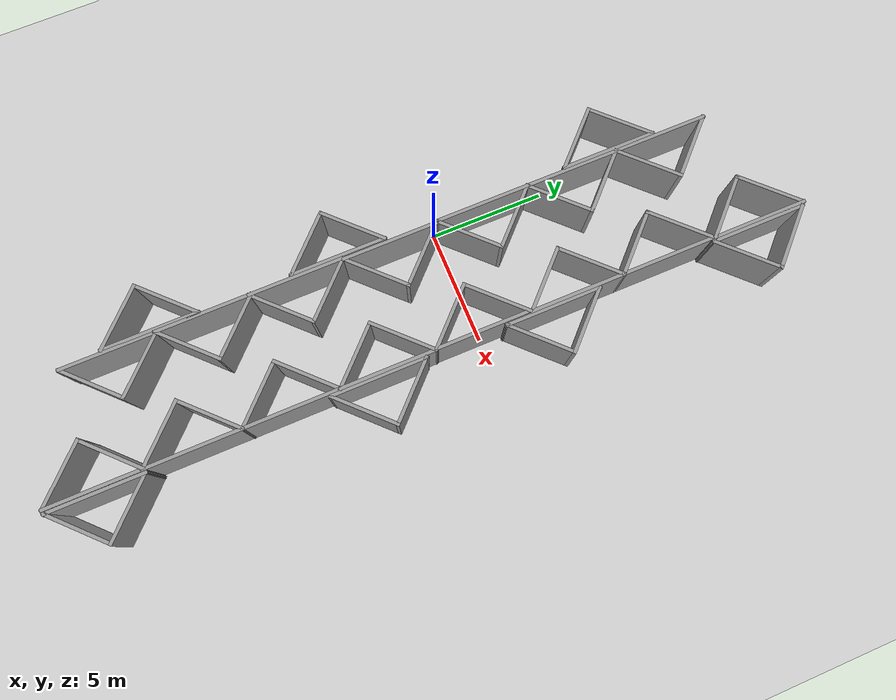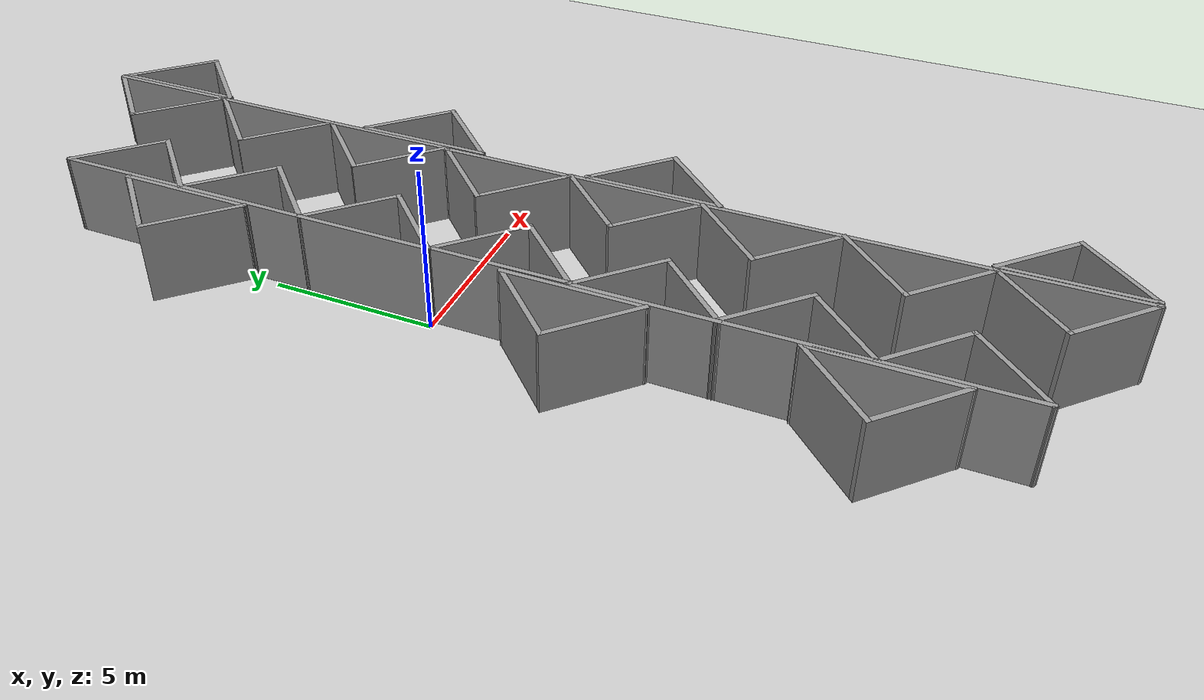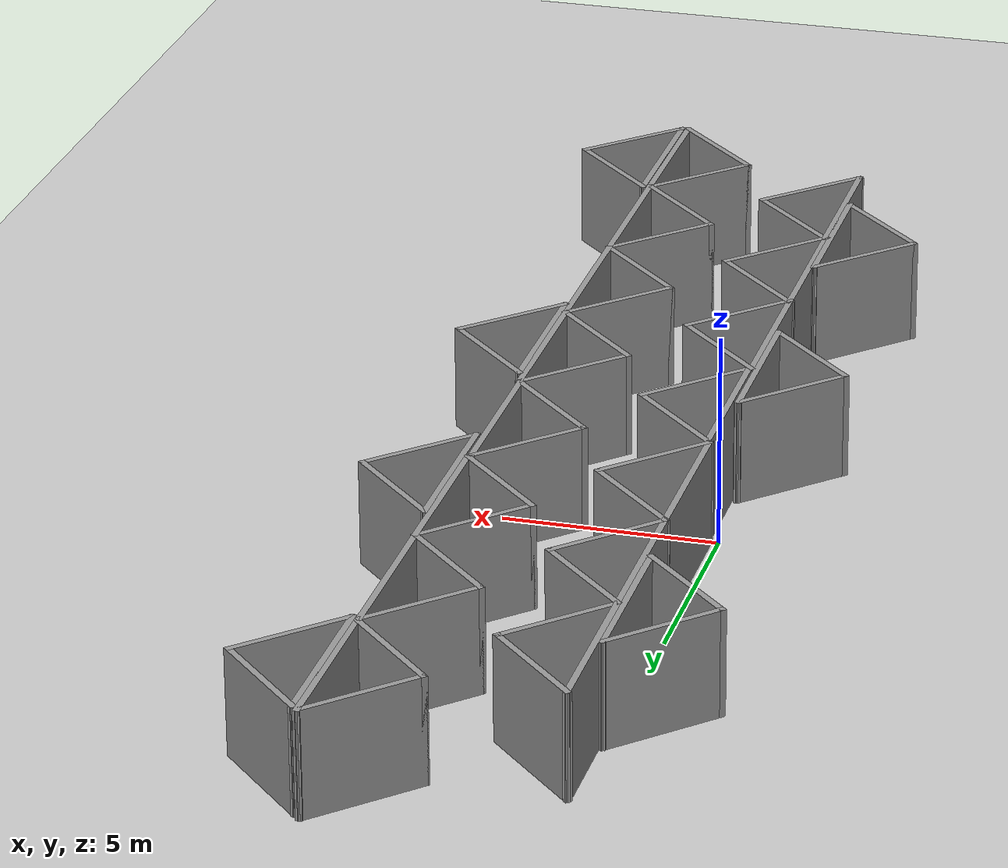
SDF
<sdf version="1.6">
 <world name="default">
  <light name="sun" type="directional">
   <pose>0 0 10 0 -0 0</pose>
   <diffuse>0.8 0.8 0.8 1</diffuse>
   <specular>0.2 0.2 0.2 1</specular>
   <attenuation>
    <range>1000</range>
    <constant>0.9</constant>
    <linear>0.01</linear>
    <quadratic>0.001</quadratic>
   </attenuation>
   <direction>-0.5 0.1 -0.9</direction>
  </light>
  <model name="ground_plane">
   <static>1</static>
   <link name="link">
    <collision name="collision">
     <geometry><plane><normal>0 0 1</normal><size>100 100</size></plane></geometry>
     <surface>
      <contact><collide_bitmask>65535</collide_bitmask></contact>
      <friction><ode><mu>100</mu><mu2>50</mu2></ode></friction>
     </surface>
    </collision>
    <visual name="visual">
     <cast_shadows>0</cast_shadows>
     <geometry><plane><normal>0 0 1</normal><size>100 100</size></plane></geometry>
     <material>
      <script><uri>file://media/materials/scripts/gazebo.material</uri><name>Gazebo/Grey</name></script>
     </material>
    </visual>
   </link>
  </model>
  <gravity>0 0 -9.8</gravity>
  <magnetic_field>6e-06 2.3e-05 -4.2e-05</magnetic_field>
  <atmosphere type="adiabatic"/>
  <physics name="default_physics" default="0" type="ode">
   <max_step_size>0.001</max_step_size>
   <real_time_factor>1</real_time_factor>
   <real_time_update_rate>1000</real_time_update_rate>
  </physics>
  <scene><ambient>0.4 0.4 0.4 1</ambient><background>0.7 0.7 0.7 1</background><shadows>1</shadows></scene>
  <audio><device>default</device></audio>
  <spherical_coordinates>
   <surface_model>EARTH_WGS84</surface_model>
   <latitude_deg>0</latitude_deg>
   <longitude_deg>0</longitude_deg>
   <elevation>0</elevation>
   <heading_deg>0</heading_deg>
  </spherical_coordinates>
  <model name="tri_90deg_3m">
   <pose>4.12957 0.012849 0 0 -0 0</pose>
   <link name="Wall_46">
    <collision name="Wall_46_Collision">
     <geometry><box><size>3 0.15 2.5</size></box></geometry>
     <pose>0 0 1.25 0 -0 0</pose>
    </collision>
    <visual name="Wall_46_Visual">
     <pose>0 0 1.25 0 -0 0</pose>
     <geometry><box><size>3 0.15 2.5</size></box></geometry>
     <material>
      <script><uri>file://media/materials/scripts/gazebo.material</uri><name>Gazebo/Grey</name></script>
      <ambient>1 1 1 1</ambient>
     </material>
     <meta><layer>0</layer></meta>
    </visual>
    <pose>0 1.00763 0 0 -0 -2.35619</pose>
   </link>
   <link name="Wall_47">
    <collision name="Wall_47_Collision">
     <geometry><box><size>3 0.15 2.5</size></box></geometry>
     <pose>0 0 1.25 0 -0 0</pose>
    </collision>
    <visual name="Wall_47_Visual">
     <pose>0 0 1.25 0 -0 0</pose>
     <geometry><box><size>3 0.15 2.5</size></box></geometry>
     <material>
      <script><uri>file://media/materials/scripts/gazebo.material</uri><name>Gazebo/Grey</name></script>
      <ambient>1 1 1 1</ambient>
     </material>
     <meta><layer>0</layer></meta>
    </visual>
    <pose>0 -1.00763 0 0 -0 -0.785398</pose>
   </link>
   <link name="Wall_48">
    <collision name="Wall_48_Collision">
     <geometry><box><size>4.18051 0.15 2.5</size></box></geometry>
     <pose>0 0 1.25 0 -0 0</pose>
    </collision>
    <visual name="Wall_48_Visual">
     <pose>0 0 1.25 0 -0 0</pose>
     <geometry><box><size>4.18051 0.15 2.5</size></box></geometry>
     <material>
      <script><uri>file://media/materials/scripts/gazebo.material</uri><name>Gazebo/Grey</name></script>
      <ambient>1 1 1 1</ambient>
     </material>
     <meta><layer>0</layer></meta>
    </visual>
    <pose>1.00763 -0 0 0 -0 1.5708</pose>
   </link>
   <static>1</static>
  </model>
  <model name="tri_90deg_3m_clone">
   <pose>4.157 -4.05337 0 0 -0 0</pose>
   <link name="Wall_46">
    <collision name="Wall_46_Collision">
     <geometry><box><size>3 0.15 2.5</size></box></geometry>
     <pose>0 0 1.25 0 -0 0</pose>
    </collision>
    <visual name="Wall_46_Visual">
     <pose>0 0 1.25 0 -0 0</pose>
     <geometry><box><size>3 0.15 2.5</size></box></geometry>
     <material>
      <script><uri>file://media/materials/scripts/gazebo.material</uri><name>Gazebo/Grey</name></script>
      <ambient>1 1 1 1</ambient>
     </material>
     <meta><layer>0</layer></meta>
    </visual>
    <pose>0 1.00763 0 0 -0 -2.35619</pose>
   </link>
   <link name="Wall_47">
    <collision name="Wall_47_Collision">
     <geometry><box><size>3 0.15 2.5</size></box></geometry>
     <pose>0 0 1.25 0 -0 0</pose>
    </collision>
    <visual name="Wall_47_Visual">
     <pose>0 0 1.25 0 -0 0</pose>
     <geometry><box><size>3 0.15 2.5</size></box></geometry>
     <material>
      <script><uri>file://media/materials/scripts/gazebo.material</uri><name>Gazebo/Grey</name></script>
      <ambient>1 1 1 1</ambient>
     </material>
     <meta><layer>0</layer></meta>
    </visual>
    <pose>0 -1.00763 0 0 -0 -0.785398</pose>
   </link>
   <link name="Wall_48">
    <collision name="Wall_48_Collision">
     <geometry><box><size>4.18051 0.15 2.5</size></box></geometry>
     <pose>0 0 1.25 0 -0 0</pose>
    </collision>
    <visual name="Wall_48_Visual">
     <pose>0 0 1.25 0 -0 0</pose>
     <geometry><box><size>4.18051 0.15 2.5</size></box></geometry>
     <material>
      <script><uri>file://media/materials/scripts/gazebo.material</uri><name>Gazebo/Grey</name></script>
      <ambient>1 1 1 1</ambient>
     </material>
     <meta><layer>0</layer></meta>
    </visual>
    <pose>1.00763 -0 0 0 -0 1.5708</pose>
   </link>
   <static>1</static>
  </model>
  <model name="tri_90deg_3m_clone_0">
   <pose>4.15781 -8.09298 0 0 -0 0</pose>
   <link name="Wall_46">
    <collision name="Wall_46_Collision">
     <geometry><box><size>3 0.15 2.5</size></box></geometry>
     <pose>0 0 1.25 0 -0 0</pose>
    </collision>
    <visual name="Wall_46_Visual">
     <pose>0 0 1.25 0 -0 0</pose>
     <geometry><box><size>3 0.15 2.5</size></box></geometry>
     <material>
      <script><uri>file://media/materials/scripts/gazebo.material</uri><name>Gazebo/Grey</name></script>
      <ambient>1 1 1 1</ambient>
     </material>
     <meta><layer>0</layer></meta>
    </visual>
    <pose>0 1.00763 0 0 -0 -2.35619</pose>
   </link>
   <link name="Wall_47">
    <collision name="Wall_47_Collision">
     <geometry><box><size>3 0.15 2.5</size></box></geometry>
     <pose>0 0 1.25 0 -0 0</pose>
    </collision>
    <visual name="Wall_47_Visual">
     <pose>0 0 1.25 0 -0 0</pose>
     <geometry><box><size>3 0.15 2.5</size></box></geometry>
     <material>
      <script><uri>file://media/materials/scripts/gazebo.material</uri><name>Gazebo/Grey</name></script>
      <ambient>1 1 1 1</ambient>
     </material>
     <meta><layer>0</layer></meta>
    </visual>
    <pose>0 -1.00763 0 0 -0 -0.785398</pose>
   </link>
   <link name="Wall_48">
    <collision name="Wall_48_Collision">
     <geometry><box><size>4.18051 0.15 2.5</size></box></geometry>
     <pose>0 0 1.25 0 -0 0</pose>
    </collision>
    <visual name="Wall_48_Visual">
     <pose>0 0 1.25 0 -0 0</pose>
     <geometry><box><size>4.18051 0.15 2.5</size></box></geometry>
     <material>
      <script><uri>file://media/materials/scripts/gazebo.material</uri><name>Gazebo/Grey</name></script>
      <ambient>1 1 1 1</ambient>
     </material>
     <meta><layer>0</layer></meta>
    </visual>
    <pose>1.00763 -0 0 0 -0 1.5708</pose>
   </link>
   <static>1</static>
  </model>
  <model name="tri_90deg_3m_clone_1">
   <pose>4.15867 -12.1326 0 0 -0 0</pose>
   <link name="Wall_46">
    <collision name="Wall_46_Collision">
     <geometry><box><size>3 0.15 2.5</size></box></geometry>
     <pose>0 0 1.25 0 -0 0</pose>
    </collision>
    <visual name="Wall_46_Visual">
     <pose>0 0 1.25 0 -0 0</pose>
     <geometry><box><size>3 0.15 2.5</size></box></geometry>
     <material>
      <script><uri>file://media/materials/scripts/gazebo.material</uri><name>Gazebo/Grey</name></script>
      <ambient>1 1 1 1</ambient>
     </material>
     <meta><layer>0</layer></meta>
    </visual>
    <pose>0 1.00763 0 0 -0 -2.35619</pose>
   </link>
   <link name="Wall_47">
    <collision name="Wall_47_Collision">
     <geometry><box><size>3 0.15 2.5</size></box></geometry>
     <pose>0 0 1.25 0 -0 0</pose>
    </collision>
    <visual name="Wall_47_Visual">
     <pose>0 0 1.25 0 -0 0</pose>
     <geometry><box><size>3 0.15 2.5</size></box></geometry>
     <material>
      <script><uri>file://media/materials/scripts/gazebo.material</uri><name>Gazebo/Grey</name></script>
      <ambient>1 1 1 1</ambient>
     </material>
     <meta><layer>0</layer></meta>
    </visual>
    <pose>0 -1.00763 0 0 -0 -0.785398</pose>
   </link>
   <link name="Wall_48">
    <collision name="Wall_48_Collision">
     <geometry><box><size>4.18051 0.15 2.5</size></box></geometry>
     <pose>0 0 1.25 0 -0 0</pose>
    </collision>
    <visual name="Wall_48_Visual">
     <pose>0 0 1.25 0 -0 0</pose>
     <geometry><box><size>4.18051 0.15 2.5</size></box></geometry>
     <material>
      <script><uri>file://media/materials/scripts/gazebo.material</uri><name>Gazebo/Grey</name></script>
      <ambient>1 1 1 1</ambient>
     </material>
     <meta><layer>0</layer></meta>
    </visual>
    <pose>1.00763 -0 0 0 -0 1.5708</pose>
   </link>
   <static>1</static>
  </model>
  <model name="tri_90deg_3m_clone_2">
   <pose>4.18187 4.10564 0 0 -0 0</pose>
   <link name="Wall_46">
    <collision name="Wall_46_Collision">
     <geometry><box><size>3 0.15 2.5</size></box></geometry>
     <pose>0 0 1.25 0 -0 0</pose>
    </collision>
    <visual name="Wall_46_Visual">
     <pose>0 0 1.25 0 -0 0</pose>
     <geometry><box><size>3 0.15 2.5</size></box></geometry>
     <material>
      <script><uri>file://media/materials/scripts/gazebo.material</uri><name>Gazebo/Grey</name></script>
      <ambient>1 1 1 1</ambient>
     </material>
     <meta><layer>0</layer></meta>
    </visual>
    <pose>0 1.00763 0 0 -0 -2.35619</pose>
   </link>
   <link name="Wall_47">
    <collision name="Wall_47_Collision">
     <geometry><box><size>3 0.15 2.5</size></box></geometry>
     <pose>0 0 1.25 0 -0 0</pose>
    </collision>
    <visual name="Wall_47_Visual">
     <pose>0 0 1.25 0 -0 0</pose>
     <geometry><box><size>3 0.15 2.5</size></box></geometry>
     <material>
      <script><uri>file://media/materials/scripts/gazebo.material</uri><name>Gazebo/Grey</name></script>
      <ambient>1 1 1 1</ambient>
     </material>
     <meta><layer>0</layer></meta>
    </visual>
    <pose>0 -1.00763 0 0 -0 -0.785398</pose>
   </link>
   <link name="Wall_48">
    <collision name="Wall_48_Collision">
     <geometry><box><size>4.18051 0.15 2.5</size></box></geometry>
     <pose>0 0 1.25 0 -0 0</pose>
    </collision>
    <visual name="Wall_48_Visual">
     <pose>0 0 1.25 0 -0 0</pose>
     <geometry><box><size>4.18051 0.15 2.5</size></box></geometry>
     <material>
      <script><uri>file://media/materials/scripts/gazebo.material</uri><name>Gazebo/Grey</name></script>
      <ambient>1 1 1 1</ambient>
     </material>
     <meta><layer>0</layer></meta>
    </visual>
    <pose>1.00763 -0 0 0 -0 1.5708</pose>
   </link>
   <static>1</static>
  </model>
  <model name="tri_90deg_3m_clone_3">
   <pose>4.18106 8.14527 0 0 -0 0</pose>
   <link name="Wall_46">
    <collision name="Wall_46_Collision">
     <geometry><box><size>3 0.15 2.5</size></box></geometry>
     <pose>0 0 1.25 0 -0 0</pose>
    </collision>
    <visual name="Wall_46_Visual">
     <pose>0 0 1.25 0 -0 0</pose>
     <geometry><box><size>3 0.15 2.5</size></box></geometry>
     <material>
      <script><uri>file://media/materials/scripts/gazebo.material</uri><name>Gazebo/Grey</name></script>
      <ambient>1 1 1 1</ambient>
     </material>
     <meta><layer>0</layer></meta>
    </visual>
    <pose>0 1.00763 0 0 -0 -2.35619</pose>
   </link>
   <link name="Wall_47">
    <collision name="Wall_47_Collision">
     <geometry><box><size>3 0.15 2.5</size></box></geometry>
     <pose>0 0 1.25 0 -0 0</pose>
    </collision>
    <visual name="Wall_47_Visual">
     <pose>0 0 1.25 0 -0 0</pose>
     <geometry><box><size>3 0.15 2.5</size></box></geometry>
     <material>
      <script><uri>file://media/materials/scripts/gazebo.material</uri><name>Gazebo/Grey</name></script>
      <ambient>1 1 1 1</ambient>
     </material>
     <meta><layer>0</layer></meta>
    </visual>
    <pose>0 -1.00763 0 0 -0 -0.785398</pose>
   </link>
   <link name="Wall_48">
    <collision name="Wall_48_Collision">
     <geometry><box><size>4.18051 0.15 2.5</size></box></geometry>
     <pose>0 0 1.25 0 -0 0</pose>
    </collision>
    <visual name="Wall_48_Visual">
     <pose>0 0 1.25 0 -0 0</pose>
     <geometry><box><size>4.18051 0.15 2.5</size></box></geometry>
     <material>
      <script><uri>file://media/materials/scripts/gazebo.material</uri><name>Gazebo/Grey</name></script>
      <ambient>1 1 1 1</ambient>
     </material>
     <meta><layer>0</layer></meta>
    </visual>
    <pose>1.00763 -0 0 0 -0 1.5708</pose>
   </link>
   <static>1</static>
  </model>
  <model name="tri_90deg_3m_clone_4">
   <pose>1.286 -2.03407 0 0 -0 3.14159</pose>
   <link name="Wall_46">
    <collision name="Wall_46_Collision">
     <geometry><box><size>3 0.15 2.5</size></box></geometry>
     <pose>0 0 1.25 0 -0 0</pose>
    </collision>
    <visual name="Wall_46_Visual">
     <pose>0 0 1.25 0 -0 0</pose>
     <geometry><box><size>3 0.15 2.5</size></box></geometry>
     <material>
      <script><uri>file://media/materials/scripts/gazebo.material</uri><name>Gazebo/Grey</name></script>
      <ambient>1 1 1 1</ambient>
     </material>
     <meta><layer>0</layer></meta>
    </visual>
    <pose>0 1.00763 0 0 -0 -2.35619</pose>
   </link>
   <link name="Wall_47">
    <collision name="Wall_47_Collision">
     <geometry><box><size>3 0.15 2.5</size></box></geometry>
     <pose>0 0 1.25 0 -0 0</pose>
    </collision>
    <visual name="Wall_47_Visual">
     <pose>0 0 1.25 0 -0 0</pose>
     <geometry><box><size>3 0.15 2.5</size></box></geometry>
     <material>
      <script><uri>file://media/materials/scripts/gazebo.material</uri><name>Gazebo/Grey</name></script>
      <ambient>1 1 1 1</ambient>
     </material>
     <meta><layer>0</layer></meta>
    </visual>
    <pose>0 -1.00763 0 0 -0 -0.785398</pose>
   </link>
   <link name="Wall_48">
    <collision name="Wall_48_Collision">
     <geometry><box><size>4.18051 0.15 2.5</size></box></geometry>
     <pose>0 0 1.25 0 -0 0</pose>
    </collision>
    <visual name="Wall_48_Visual">
     <pose>0 0 1.25 0 -0 0</pose>
     <geometry><box><size>4.18051 0.15 2.5</size></box></geometry>
     <material>
      <script><uri>file://media/materials/scripts/gazebo.material</uri><name>Gazebo/Grey</name></script>
      <ambient>1 1 1 1</ambient>
     </material>
     <meta><layer>0</layer></meta>
    </visual>
    <pose>1.00763 -0 0 0 -0 1.5708</pose>
   </link>
   <static>1</static>
  </model>
  <model name="tri_90deg_3m_clone_4_clone">
   <pose>1.23405 -6.07331 0 0 -0 3.14159</pose>
   <link name="Wall_46">
    <collision name="Wall_46_Collision">
     <geometry><box><size>3 0.15 2.5</size></box></geometry>
     <pose>0 0 1.25 0 -0 0</pose>
    </collision>
    <visual name="Wall_46_Visual">
     <pose>0 0 1.25 0 -0 0</pose>
     <geometry><box><size>3 0.15 2.5</size></box></geometry>
     <material>
      <script><uri>file://media/materials/scripts/gazebo.material</uri><name>Gazebo/Grey</name></script>
      <ambient>1 1 1 1</ambient>
     </material>
     <meta><layer>0</layer></meta>
    </visual>
    <pose>0 1.00763 0 0 -0 -2.35619</pose>
   </link>
   <link name="Wall_47">
    <collision name="Wall_47_Collision">
     <geometry><box><size>3 0.15 2.5</size></box></geometry>
     <pose>0 0 1.25 0 -0 0</pose>
    </collision>
    <visual name="Wall_47_Visual">
     <pose>0 0 1.25 0 -0 0</pose>
     <geometry><box><size>3 0.15 2.5</size></box></geometry>
     <material>
      <script><uri>file://media/materials/scripts/gazebo.material</uri><name>Gazebo/Grey</name></script>
      <ambient>1 1 1 1</ambient>
     </material>
     <meta><layer>0</layer></meta>
    </visual>
    <pose>0 -1.00763 0 0 -0 -0.785398</pose>
   </link>
   <link name="Wall_48">
    <collision name="Wall_48_Collision">
     <geometry><box><size>4.18051 0.15 2.5</size></box></geometry>
     <pose>0 0 1.25 0 -0 0</pose>
    </collision>
    <visual name="Wall_48_Visual">
     <pose>0 0 1.25 0 -0 0</pose>
     <geometry><box><size>4.18051 0.15 2.5</size></box></geometry>
     <material>
      <script><uri>file://media/materials/scripts/gazebo.material</uri><name>Gazebo/Grey</name></script>
      <ambient>1 1 1 1</ambient>
     </material>
     <meta><layer>0</layer></meta>
    </visual>
    <pose>1.00763 -0 0 0 -0 1.5708</pose>
   </link>
   <static>1</static>
  </model>
  <model name="tri_90deg_3m_clone_4_clone_0">
   <pose>1.23486 -10.0062 0 0 -0 3.14159</pose>
   <link name="Wall_46">
    <collision name="Wall_46_Collision">
     <geometry><box><size>3 0.15 2.5</size></box></geometry>
     <pose>0 0 1.25 0 -0 0</pose>
    </collision>
    <visual name="Wall_46_Visual">
     <pose>0 0 1.25 0 -0 0</pose>
     <geometry><box><size>3 0.15 2.5</size></box></geometry>
     <material>
      <script><uri>file://media/materials/scripts/gazebo.material</uri><name>Gazebo/Grey</name></script>
      <ambient>1 1 1 1</ambient>
     </material>
     <meta><layer>0</layer></meta>
    </visual>
    <pose>0 1.00763 0 0 -0 -2.35619</pose>
   </link>
   <link name="Wall_47">
    <collision name="Wall_47_Collision">
     <geometry><box><size>3 0.15 2.5</size></box></geometry>
     <pose>0 0 1.25 0 -0 0</pose>
    </collision>
    <visual name="Wall_47_Visual">
     <pose>0 0 1.25 0 -0 0</pose>
     <geometry><box><size>3 0.15 2.5</size></box></geometry>
     <material>
      <script><uri>file://media/materials/scripts/gazebo.material</uri><name>Gazebo/Grey</name></script>
      <ambient>1 1 1 1</ambient>
     </material>
     <meta><layer>0</layer></meta>
    </visual>
    <pose>0 -1.00763 0 0 -0 -0.785398</pose>
   </link>
   <link name="Wall_48">
    <collision name="Wall_48_Collision">
     <geometry><box><size>4.18051 0.15 2.5</size></box></geometry>
     <pose>0 0 1.25 0 -0 0</pose>
    </collision>
    <visual name="Wall_48_Visual">
     <pose>0 0 1.25 0 -0 0</pose>
     <geometry><box><size>4.18051 0.15 2.5</size></box></geometry>
     <material>
      <script><uri>file://media/materials/scripts/gazebo.material</uri><name>Gazebo/Grey</name></script>
      <ambient>1 1 1 1</ambient>
     </material>
     <meta><layer>0</layer></meta>
    </visual>
    <pose>1.00763 -0 0 0 -0 1.5708</pose>
   </link>
   <static>1</static>
  </model>
  <model name="tri_90deg_3m_clone_4_clone_1">
   <pose>1.23236 2.05825 0 0 -0 3.14159</pose>
   <link name="Wall_46">
    <collision name="Wall_46_Collision">
     <geometry><box><size>3 0.15 2.5</size></box></geometry>
     <pose>0 0 1.25 0 -0 0</pose>
    </collision>
    <visual name="Wall_46_Visual">
     <pose>0 0 1.25 0 -0 0</pose>
     <geometry><box><size>3 0.15 2.5</size></box></geometry>
     <material>
      <script><uri>file://media/materials/scripts/gazebo.material</uri><name>Gazebo/Grey</name></script>
      <ambient>1 1 1 1</ambient>
     </material>
     <meta><layer>0</layer></meta>
    </visual>
    <pose>0 1.00763 0 0 -0 -2.35619</pose>
   </link>
   <link name="Wall_47">
    <collision name="Wall_47_Collision">
     <geometry><box><size>3 0.15 2.5</size></box></geometry>
     <pose>0 0 1.25 0 -0 0</pose>
    </collision>
    <visual name="Wall_47_Visual">
     <pose>0 0 1.25 0 -0 0</pose>
     <geometry><box><size>3 0.15 2.5</size></box></geometry>
     <material>
      <script><uri>file://media/materials/scripts/gazebo.material</uri><name>Gazebo/Grey</name></script>
      <ambient>1 1 1 1</ambient>
     </material>
     <meta><layer>0</layer></meta>
    </visual>
    <pose>0 -1.00763 0 0 -0 -0.785398</pose>
   </link>
   <link name="Wall_48">
    <collision name="Wall_48_Collision">
     <geometry><box><size>4.18051 0.15 2.5</size></box></geometry>
     <pose>0 0 1.25 0 -0 0</pose>
    </collision>
    <visual name="Wall_48_Visual">
     <pose>0 0 1.25 0 -0 0</pose>
     <geometry><box><size>4.18051 0.15 2.5</size></box></geometry>
     <material>
      <script><uri>file://media/materials/scripts/gazebo.material</uri><name>Gazebo/Grey</name></script>
      <ambient>1 1 1 1</ambient>
     </material>
     <meta><layer>0</layer></meta>
    </visual>
    <pose>1.00763 -0 0 0 -0 1.5708</pose>
   </link>
   <static>1</static>
  </model>
  <model name="tri_90deg_3m_clone_4_clone_2">
   <pose>1.23152 6.09742 0 0 -0 3.14159</pose>
   <link name="Wall_46">
    <collision name="Wall_46_Collision">
     <geometry><box><size>3 0.15 2.5</size></box></geometry>
     <pose>0 0 1.25 0 -0 0</pose>
    </collision>
    <visual name="Wall_46_Visual">
     <pose>0 0 1.25 0 -0 0</pose>
     <geometry><box><size>3 0.15 2.5</size></box></geometry>
     <material>
      <script><uri>file://media/materials/scripts/gazebo.material</uri><name>Gazebo/Grey</name></script>
      <ambient>1 1 1 1</ambient>
     </material>
     <meta><layer>0</layer></meta>
    </visual>
    <pose>0 1.00763 0 0 -0 -2.35619</pose>
   </link>
   <link name="Wall_47">
    <collision name="Wall_47_Collision">
     <geometry><box><size>3 0.15 2.5</size></box></geometry>
     <pose>0 0 1.25 0 -0 0</pose>
    </collision>
    <visual name="Wall_47_Visual">
     <pose>0 0 1.25 0 -0 0</pose>
     <geometry><box><size>3 0.15 2.5</size></box></geometry>
     <material>
      <script><uri>file://media/materials/scripts/gazebo.material</uri><name>Gazebo/Grey</name></script>
      <ambient>1 1 1 1</ambient>
     </material>
     <meta><layer>0</layer></meta>
    </visual>
    <pose>0 -1.00763 0 0 -0 -0.785398</pose>
   </link>
   <link name="Wall_48">
    <collision name="Wall_48_Collision">
     <geometry><box><size>4.18051 0.15 2.5</size></box></geometry>
     <pose>0 0 1.25 0 -0 0</pose>
    </collision>
    <visual name="Wall_48_Visual">
     <pose>0 0 1.25 0 -0 0</pose>
     <geometry><box><size>4.18051 0.15 2.5</size></box></geometry>
     <material>
      <script><uri>file://media/materials/scripts/gazebo.material</uri><name>Gazebo/Grey</name></script>
      <ambient>1 1 1 1</ambient>
     </material>
     <meta><layer>0</layer></meta>
    </visual>
    <pose>1.00763 -0 0 0 -0 1.5708</pose>
   </link>
   <static>1</static>
  </model>
  <model name="tri_90deg_3m_clone_4_clone_3">
   <pose>1.2516 -13.9835 0 0 -0 3.14159</pose>
   <link name="Wall_46">
    <collision name="Wall_46_Collision">
     <geometry><box><size>3 0.15 2.5</size></box></geometry>
     <pose>0 0 1.25 0 -0 0</pose>
    </collision>
    <visual name="Wall_46_Visual">
     <pose>0 0 1.25 0 -0 0</pose>
     <geometry><box><size>3 0.15 2.5</size></box></geometry>
     <material>
      <script><uri>file://media/materials/scripts/gazebo.material</uri><name>Gazebo/Grey</name></script>
      <ambient>1 1 1 1</ambient>
     </material>
     <meta><layer>0</layer></meta>
    </visual>
    <pose>0 1.00763 0 0 -0 -2.35619</pose>
   </link>
   <link name="Wall_47">
    <collision name="Wall_47_Collision">
     <geometry><box><size>3 0.15 2.5</size></box></geometry>
     <pose>0 0 1.25 0 -0 0</pose>
    </collision>
    <visual name="Wall_47_Visual">
     <pose>0 0 1.25 0 -0 0</pose>
     <geometry><box><size>3 0.15 2.5</size></box></geometry>
     <material>
      <script><uri>file://media/materials/scripts/gazebo.material</uri><name>Gazebo/Grey</name></script>
      <ambient>1 1 1 1</ambient>
     </material>
     <meta><layer>0</layer></meta>
    </visual>
    <pose>0 -1.00763 0 0 -0 -0.785398</pose>
   </link>
   <link name="Wall_48">
    <collision name="Wall_48_Collision">
     <geometry><box><size>4.18051 0.15 2.5</size></box></geometry>
     <pose>0 0 1.25 0 -0 0</pose>
    </collision>
    <visual name="Wall_48_Visual">
     <pose>0 0 1.25 0 -0 0</pose>
     <geometry><box><size>4.18051 0.15 2.5</size></box></geometry>
     <material>
      <script><uri>file://media/materials/scripts/gazebo.material</uri><name>Gazebo/Grey</name></script>
      <ambient>1 1 1 1</ambient>
     </material>
     <meta><layer>0</layer></meta>
    </visual>
    <pose>1.00763 -0 0 0 -0 1.5708</pose>
   </link>
   <static>1</static>
  </model>
  <model name="tri_90deg_3m_clone_4_clone_4">
   <pose>1.22993 10.1382 0 0 -0 3.14159</pose>
   <link name="Wall_46">
    <collision name="Wall_46_Collision">
     <geometry><box><size>3 0.15 2.5</size></box></geometry>
     <pose>0 0 1.25 0 -0 0</pose>
    </collision>
    <visual name="Wall_46_Visual">
     <pose>0 0 1.25 0 -0 0</pose>
     <geometry><box><size>3 0.15 2.5</size></box></geometry>
     <material>
      <script><uri>file://media/materials/scripts/gazebo.material</uri><name>Gazebo/Grey</name></script>
      <ambient>1 1 1 1</ambient>
     </material>
     <meta><layer>0</layer></meta>
    </visual>
    <pose>0 1.00763 0 0 -0 -2.35619</pose>
   </link>
   <link name="Wall_47">
    <collision name="Wall_47_Collision">
     <geometry><box><size>3 0.15 2.5</size></box></geometry>
     <pose>0 0 1.25 0 -0 0</pose>
    </collision>
    <visual name="Wall_47_Visual">
     <pose>0 0 1.25 0 -0 0</pose>
     <geometry><box><size>3 0.15 2.5</size></box></geometry>
     <material>
      <script><uri>file://media/materials/scripts/gazebo.material</uri><name>Gazebo/Grey</name></script>
      <ambient>1 1 1 1</ambient>
     </material>
     <meta><layer>0</layer></meta>
    </visual>
    <pose>0 -1.00763 0 0 -0 -0.785398</pose>
   </link>
   <link name="Wall_48">
    <collision name="Wall_48_Collision">
     <geometry><box><size>4.18051 0.15 2.5</size></box></geometry>
     <pose>0 0 1.25 0 -0 0</pose>
    </collision>
    <visual name="Wall_48_Visual">
     <pose>0 0 1.25 0 -0 0</pose>
     <geometry><box><size>4.18051 0.15 2.5</size></box></geometry>
     <material>
      <script><uri>file://media/materials/scripts/gazebo.material</uri><name>Gazebo/Grey</name></script>
      <ambient>1 1 1 1</ambient>
     </material>
     <meta><layer>0</layer></meta>
    </visual>
    <pose>1.00763 -0 0 0 -0 1.5708</pose>
   </link>
   <static>1</static>
  </model>
  <model name="tri_90deg_3m_clone_3_clone">
   <pose>4.2059 12.2394 0 0 -0 0</pose>
   <link name="Wall_46">
    <collision name="Wall_46_Collision">
     <geometry><box><size>3 0.15 2.5</size></box></geometry>
     <pose>0 0 1.25 0 -0 0</pose>
    </collision>
    <visual name="Wall_46_Visual">
     <pose>0 0 1.25 0 -0 0</pose>
     <geometry><box><size>3 0.15 2.5</size></box></geometry>
     <material>
      <script><uri>file://media/materials/scripts/gazebo.material</uri><name>Gazebo/Grey</name></script>
      <ambient>1 1 1 1</ambient>
     </material>
     <meta><layer>0</layer></meta>
    </visual>
    <pose>0 1.00763 0 0 -0 -2.35619</pose>
   </link>
   <link name="Wall_47">
    <collision name="Wall_47_Collision">
     <geometry><box><size>3 0.15 2.5</size></box></geometry>
     <pose>0 0 1.25 0 -0 0</pose>
    </collision>
    <visual name="Wall_47_Visual">
     <pose>0 0 1.25 0 -0 0</pose>
     <geometry><box><size>3 0.15 2.5</size></box></geometry>
     <material>
      <script><uri>file://media/materials/scripts/gazebo.material</uri><name>Gazebo/Grey</name></script>
      <ambient>1 1 1 1</ambient>
     </material>
     <meta><layer>0</layer></meta>
    </visual>
    <pose>0 -1.00763 0 0 -0 -0.785398</pose>
   </link>
   <link name="Wall_48">
    <collision name="Wall_48_Collision">
     <geometry><box><size>4.18051 0.15 2.5</size></box></geometry>
     <pose>0 0 1.25 0 -0 0</pose>
    </collision>
    <visual name="Wall_48_Visual">
     <pose>0 0 1.25 0 -0 0</pose>
     <geometry><box><size>4.18051 0.15 2.5</size></box></geometry>
     <material>
      <script><uri>file://media/materials/scripts/gazebo.material</uri><name>Gazebo/Grey</name></script>
      <ambient>1 1 1 1</ambient>
     </material>
     <meta><layer>0</layer></meta>
    </visual>
    <pose>1.00763 -0 0 0 -0 1.5708</pose>
   </link>
   <static>1</static>
  </model>
  <model name="tri_90deg_3m_clone_3_clone_0">
   <pose>4.15855 -16.1178 0 0 -0 0</pose>
   <link name="Wall_46">
    <collision name="Wall_46_Collision">
     <geometry><box><size>3 0.15 2.5</size></box></geometry>
     <pose>0 0 1.25 0 -0 0</pose>
    </collision>
    <visual name="Wall_46_Visual">
     <pose>0 0 1.25 0 -0 0</pose>
     <geometry><box><size>3 0.15 2.5</size></box></geometry>
     <material>
      <script><uri>file://media/materials/scripts/gazebo.material</uri><name>Gazebo/Grey</name></script>
      <ambient>1 1 1 1</ambient>
     </material>
     <meta><layer>0</layer></meta>
    </visual>
    <pose>0 1.00763 0 0 -0 -2.35619</pose>
   </link>
   <link name="Wall_47">
    <collision name="Wall_47_Collision">
     <geometry><box><size>3 0.15 2.5</size></box></geometry>
     <pose>0 0 1.25 0 -0 0</pose>
    </collision>
    <visual name="Wall_47_Visual">
     <pose>0 0 1.25 0 -0 0</pose>
     <geometry><box><size>3 0.15 2.5</size></box></geometry>
     <material>
      <script><uri>file://media/materials/scripts/gazebo.material</uri><name>Gazebo/Grey</name></script>
      <ambient>1 1 1 1</ambient>
     </material>
     <meta><layer>0</layer></meta>
    </visual>
    <pose>0 -1.00763 0 0 -0 -0.785398</pose>
   </link>
   <link name="Wall_48">
    <collision name="Wall_48_Collision">
     <geometry><box><size>4.18051 0.15 2.5</size></box></geometry>
     <pose>0 0 1.25 0 -0 0</pose>
    </collision>
    <visual name="Wall_48_Visual">
     <pose>0 0 1.25 0 -0 0</pose>
     <geometry><box><size>4.18051 0.15 2.5</size></box></geometry>
     <material>
      <script><uri>file://media/materials/scripts/gazebo.material</uri><name>Gazebo/Grey</name></script>
      <ambient>1 1 1 1</ambient>
     </material>
     <meta><layer>0</layer></meta>
    </visual>
    <pose>1.00763 -0 0 0 -0 1.5708</pose>
   </link>
   <static>1</static>
  </model>
  <model name="tri_90deg_3m_clone_3_clone_1">
   <pose>-0.91961 -4.21179 0 0 -0 0</pose>
   <link name="Wall_46">
    <collision name="Wall_46_Collision">
     <geometry><box><size>3 0.15 2.5</size></box></geometry>
     <pose>0 0 1.25 0 -0 0</pose>
    </collision>
    <visual name="Wall_46_Visual">
     <pose>0 0 1.25 0 -0 0</pose>
     <geometry><box><size>3 0.15 2.5</size></box></geometry>
     <material>
      <script><uri>file://media/materials/scripts/gazebo.material</uri><name>Gazebo/Grey</name></script>
      <ambient>1 1 1 1</ambient>
     </material>
     <meta><layer>0</layer></meta>
    </visual>
    <pose>0 1.00763 0 0 -0 -2.35619</pose>
   </link>
   <link name="Wall_47">
    <collision name="Wall_47_Collision">
     <geometry><box><size>3 0.15 2.5</size></box></geometry>
     <pose>0 0 1.25 0 -0 0</pose>
    </collision>
    <visual name="Wall_47_Visual">
     <pose>0 0 1.25 0 -0 0</pose>
     <geometry><box><size>3 0.15 2.5</size></box></geometry>
     <material>
      <script><uri>file://media/materials/scripts/gazebo.material</uri><name>Gazebo/Grey</name></script>
      <ambient>1 1 1 1</ambient>
     </material>
     <meta><layer>0</layer></meta>
    </visual>
    <pose>0 -1.00763 0 0 -0 -0.785398</pose>
   </link>
   <link name="Wall_48">
    <collision name="Wall_48_Collision">
     <geometry><box><size>4.18051 0.15 2.5</size></box></geometry>
     <pose>0 0 1.25 0 -0 0</pose>
    </collision>
    <visual name="Wall_48_Visual">
     <pose>0 0 1.25 0 -0 0</pose>
     <geometry><box><size>4.18051 0.15 2.5</size></box></geometry>
     <material>
      <script><uri>file://media/materials/scripts/gazebo.material</uri><name>Gazebo/Grey</name></script>
      <ambient>1 1 1 1</ambient>
     </material>
     <meta><layer>0</layer></meta>
    </visual>
    <pose>1.00763 -0 0 0 -0 1.5708</pose>
   </link>
   <static>1</static>
  </model>
  <model name="tri_90deg_3m_clone_3_clone_2">
   <pose>-0.89131 -12.2101 0 0 -0 0</pose>
   <link name="Wall_46">
    <collision name="Wall_46_Collision">
     <geometry><box><size>3 0.15 2.5</size></box></geometry>
     <pose>0 0 1.25 0 -0 0</pose>
    </collision>
    <visual name="Wall_46_Visual">
     <pose>0 0 1.25 0 -0 0</pose>
     <geometry><box><size>3 0.15 2.5</size></box></geometry>
     <material>
      <script><uri>file://media/materials/scripts/gazebo.material</uri><name>Gazebo/Grey</name></script>
      <ambient>1 1 1 1</ambient>
     </material>
     <meta><layer>0</layer></meta>
    </visual>
    <pose>0 1.00763 0 0 -0 -2.35619</pose>
   </link>
   <link name="Wall_47">
    <collision name="Wall_47_Collision">
     <geometry><box><size>3 0.15 2.5</size></box></geometry>
     <pose>0 0 1.25 0 -0 0</pose>
    </collision>
    <visual name="Wall_47_Visual">
     <pose>0 0 1.25 0 -0 0</pose>
     <geometry><box><size>3 0.15 2.5</size></box></geometry>
     <material>
      <script><uri>file://media/materials/scripts/gazebo.material</uri><name>Gazebo/Grey</name></script>
      <ambient>1 1 1 1</ambient>
     </material>
     <meta><layer>0</layer></meta>
    </visual>
    <pose>0 -1.00763 0 0 -0 -0.785398</pose>
   </link>
   <link name="Wall_48">
    <collision name="Wall_48_Collision">
     <geometry><box><size>4.18051 0.15 2.5</size></box></geometry>
     <pose>0 0 1.25 0 -0 0</pose>
    </collision>
    <visual name="Wall_48_Visual">
     <pose>0 0 1.25 0 -0 0</pose>
     <geometry><box><size>4.18051 0.15 2.5</size></box></geometry>
     <material>
      <script><uri>file://media/materials/scripts/gazebo.material</uri><name>Gazebo/Grey</name></script>
      <ambient>1 1 1 1</ambient>
     </material>
     <meta><layer>0</layer></meta>
    </visual>
    <pose>1.00763 -0 0 0 -0 1.5708</pose>
   </link>
   <static>1</static>
  </model>
  <model name="tri_90deg_3m_clone_3_clone_3">
   <pose>-0.922012 7.85215 0 0 -0 0</pose>
   <link name="Wall_46">
    <collision name="Wall_46_Collision">
     <geometry><box><size>3 0.15 2.5</size></box></geometry>
     <pose>0 0 1.25 0 -0 0</pose>
    </collision>
    <visual name="Wall_46_Visual">
     <pose>0 0 1.25 0 -0 0</pose>
     <geometry><box><size>3 0.15 2.5</size></box></geometry>
     <material>
      <script><uri>file://media/materials/scripts/gazebo.material</uri><name>Gazebo/Grey</name></script>
      <ambient>1 1 1 1</ambient>
     </material>
     <meta><layer>0</layer></meta>
    </visual>
    <pose>0 1.00763 0 0 -0 -2.35619</pose>
   </link>
   <link name="Wall_47">
    <collision name="Wall_47_Collision">
     <geometry><box><size>3 0.15 2.5</size></box></geometry>
     <pose>0 0 1.25 0 -0 0</pose>
    </collision>
    <visual name="Wall_47_Visual">
     <pose>0 0 1.25 0 -0 0</pose>
     <geometry><box><size>3 0.15 2.5</size></box></geometry>
     <material>
      <script><uri>file://media/materials/scripts/gazebo.material</uri><name>Gazebo/Grey</name></script>
      <ambient>1 1 1 1</ambient>
     </material>
     <meta><layer>0</layer></meta>
    </visual>
    <pose>0 -1.00763 0 0 -0 -0.785398</pose>
   </link>
   <link name="Wall_48">
    <collision name="Wall_48_Collision">
     <geometry><box><size>4.18051 0.15 2.5</size></box></geometry>
     <pose>0 0 1.25 0 -0 0</pose>
    </collision>
    <visual name="Wall_48_Visual">
     <pose>0 0 1.25 0 -0 0</pose>
     <geometry><box><size>4.18051 0.15 2.5</size></box></geometry>
     <material>
      <script><uri>file://media/materials/scripts/gazebo.material</uri><name>Gazebo/Grey</name></script>
      <ambient>1 1 1 1</ambient>
     </material>
     <meta><layer>0</layer></meta>
    </visual>
    <pose>1.00763 -0 0 0 -0 1.5708</pose>
   </link>
   <static>1</static>
  </model>
  <model name="tri_90deg_3m_clone_4_clone_1_clone">
   <pose>6.3588 12.1073 0 0 -0 3.14159</pose>
   <link name="Wall_46">
    <collision name="Wall_46_Collision">
     <geometry><box><size>3 0.15 2.5</size></box></geometry>
     <pose>0 0 1.25 0 -0 0</pose>
    </collision>
    <visual name="Wall_46_Visual">
     <pose>0 0 1.25 0 -0 0</pose>
     <geometry><box><size>3 0.15 2.5</size></box></geometry>
     <material>
      <script><uri>file://media/materials/scripts/gazebo.material</uri><name>Gazebo/Grey</name></script>
      <ambient>1 1 1 1</ambient>
     </material>
     <meta><layer>0</layer></meta>
    </visual>
    <pose>0 1.00763 0 0 -0 -2.35619</pose>
   </link>
   <link name="Wall_47">
    <collision name="Wall_47_Collision">
     <geometry><box><size>3 0.15 2.5</size></box></geometry>
     <pose>0 0 1.25 0 -0 0</pose>
    </collision>
    <visual name="Wall_47_Visual">
     <pose>0 0 1.25 0 -0 0</pose>
     <geometry><box><size>3 0.15 2.5</size></box></geometry>
     <material>
      <script><uri>file://media/materials/scripts/gazebo.material</uri><name>Gazebo/Grey</name></script>
      <ambient>1 1 1 1</ambient>
     </material>
     <meta><layer>0</layer></meta>
    </visual>
    <pose>0 -1.00763 0 0 -0 -0.785398</pose>
   </link>
   <link name="Wall_48">
    <collision name="Wall_48_Collision">
     <geometry><box><size>4.18051 0.15 2.5</size></box></geometry>
     <pose>0 0 1.25 0 -0 0</pose>
    </collision>
    <visual name="Wall_48_Visual">
     <pose>0 0 1.25 0 -0 0</pose>
     <geometry><box><size>4.18051 0.15 2.5</size></box></geometry>
     <material>
      <script><uri>file://media/materials/scripts/gazebo.material</uri><name>Gazebo/Grey</name></script>
      <ambient>1 1 1 1</ambient>
     </material>
     <meta><layer>0</layer></meta>
    </visual>
    <pose>1.00763 -0 0 0 -0 1.5708</pose>
   </link>
   <static>1</static>
  </model>
  <model name="tri_90deg_3m_clone_4_clone_1_clone_0">
   <pose>6.33409 2.96467 0 0 -0 3.14159</pose>
   <link name="Wall_46">
    <collision name="Wall_46_Collision">
     <geometry><box><size>3 0.15 2.5</size></box></geometry>
     <pose>0 0 1.25 0 -0 0</pose>
    </collision>
    <visual name="Wall_46_Visual">
     <pose>0 0 1.25 0 -0 0</pose>
     <geometry><box><size>3 0.15 2.5</size></box></geometry>
     <material>
      <script><uri>file://media/materials/scripts/gazebo.material</uri><name>Gazebo/Grey</name></script>
      <ambient>1 1 1 1</ambient>
     </material>
     <meta><layer>0</layer></meta>
    </visual>
    <pose>0 1.00763 0 0 -0 -2.35619</pose>
   </link>
   <link name="Wall_47">
    <collision name="Wall_47_Collision">
     <geometry><box><size>3 0.15 2.5</size></box></geometry>
     <pose>0 0 1.25 0 -0 0</pose>
    </collision>
    <visual name="Wall_47_Visual">
     <pose>0 0 1.25 0 -0 0</pose>
     <geometry><box><size>3 0.15 2.5</size></box></geometry>
     <material>
      <script><uri>file://media/materials/scripts/gazebo.material</uri><name>Gazebo/Grey</name></script>
      <ambient>1 1 1 1</ambient>
     </material>
     <meta><layer>0</layer></meta>
    </visual>
    <pose>0 -1.00763 0 0 -0 -0.785398</pose>
   </link>
   <link name="Wall_48">
    <collision name="Wall_48_Collision">
     <geometry><box><size>4.18051 0.15 2.5</size></box></geometry>
     <pose>0 0 1.25 0 -0 0</pose>
    </collision>
    <visual name="Wall_48_Visual">
     <pose>0 0 1.25 0 -0 0</pose>
     <geometry><box><size>4.18051 0.15 2.5</size></box></geometry>
     <material>
      <script><uri>file://media/materials/scripts/gazebo.material</uri><name>Gazebo/Grey</name></script>
      <ambient>1 1 1 1</ambient>
     </material>
     <meta><layer>0</layer></meta>
    </visual>
    <pose>1.00763 -0 0 0 -0 1.5708</pose>
   </link>
   <static>1</static>
  </model>
  <model name="tri_90deg_3m_clone_4_clone_1_clone_1">
   <pose>6.33812 -16.0914 0 0 -0 3.14159</pose>
   <link name="Wall_46">
    <collision name="Wall_46_Collision">
     <geometry><box><size>3 0.15 2.5</size></box></geometry>
     <pose>0 0 1.25 0 -0 0</pose>
    </collision>
    <visual name="Wall_46_Visual">
     <pose>0 0 1.25 0 -0 0</pose>
     <geometry><box><size>3 0.15 2.5</size></box></geometry>
     <material>
      <script><uri>file://media/materials/scripts/gazebo.material</uri><name>Gazebo/Grey</name></script>
      <ambient>1 1 1 1</ambient>
     </material>
     <meta><layer>0</layer></meta>
    </visual>
    <pose>0 1.00763 0 0 -0 -2.35619</pose>
   </link>
   <link name="Wall_47">
    <collision name="Wall_47_Collision">
     <geometry><box><size>3 0.15 2.5</size></box></geometry>
     <pose>0 0 1.25 0 -0 0</pose>
    </collision>
    <visual name="Wall_47_Visual">
     <pose>0 0 1.25 0 -0 0</pose>
     <geometry><box><size>3 0.15 2.5</size></box></geometry>
     <material>
      <script><uri>file://media/materials/scripts/gazebo.material</uri><name>Gazebo/Grey</name></script>
      <ambient>1 1 1 1</ambient>
     </material>
     <meta><layer>0</layer></meta>
    </visual>
    <pose>0 -1.00763 0 0 -0 -0.785398</pose>
   </link>
   <link name="Wall_48">
    <collision name="Wall_48_Collision">
     <geometry><box><size>4.18051 0.15 2.5</size></box></geometry>
     <pose>0 0 1.25 0 -0 0</pose>
    </collision>
    <visual name="Wall_48_Visual">
     <pose>0 0 1.25 0 -0 0</pose>
     <geometry><box><size>4.18051 0.15 2.5</size></box></geometry>
     <material>
      <script><uri>file://media/materials/scripts/gazebo.material</uri><name>Gazebo/Grey</name></script>
      <ambient>1 1 1 1</ambient>
     </material>
     <meta><layer>0</layer></meta>
    </visual>
    <pose>1.00763 -0 0 0 -0 1.5708</pose>
   </link>
   <static>1</static>
  </model>
  <model name="tri_90deg_3m_clone_4_clone_1_clone_0_clone">
   <pose>6.3075 -4.51647 0 0 -0 3.14159</pose>
   <link name="Wall_46">
    <collision name="Wall_46_Collision">
     <geometry><box><size>3 0.15 2.5</size></box></geometry>
     <pose>0 0 1.25 0 -0 0</pose>
    </collision>
    <visual name="Wall_46_Visual">
     <pose>0 0 1.25 0 -0 0</pose>
     <geometry><box><size>3 0.15 2.5</size></box></geometry>
     <material>
      <script><uri>file://media/materials/scripts/gazebo.material</uri><name>Gazebo/Grey</name></script>
      <ambient>1 1 1 1</ambient>
     </material>
     <meta><layer>0</layer></meta>
    </visual>
    <pose>0 1.00763 0 0 -0 -2.35619</pose>
   </link>
   <link name="Wall_47">
    <collision name="Wall_47_Collision">
     <geometry><box><size>3 0.15 2.5</size></box></geometry>
     <pose>0 0 1.25 0 -0 0</pose>
    </collision>
    <visual name="Wall_47_Visual">
     <pose>0 0 1.25 0 -0 0</pose>
     <geometry><box><size>3 0.15 2.5</size></box></geometry>
     <material>
      <script><uri>file://media/materials/scripts/gazebo.material</uri><name>Gazebo/Grey</name></script>
      <ambient>1 1 1 1</ambient>
     </material>
     <meta><layer>0</layer></meta>
    </visual>
    <pose>0 -1.00763 0 0 -0 -0.785398</pose>
   </link>
   <link name="Wall_48">
    <collision name="Wall_48_Collision">
     <geometry><box><size>4.18051 0.15 2.5</size></box></geometry>
     <pose>0 0 1.25 0 -0 0</pose>
    </collision>
    <visual name="Wall_48_Visual">
     <pose>0 0 1.25 0 -0 0</pose>
     <geometry><box><size>4.18051 0.15 2.5</size></box></geometry>
     <material>
      <script><uri>file://media/materials/scripts/gazebo.material</uri><name>Gazebo/Grey</name></script>
      <ambient>1 1 1 1</ambient>
     </material>
     <meta><layer>0</layer></meta>
    </visual>
    <pose>1.00763 -0 0 0 -0 1.5708</pose>
   </link>
   <static>1</static>
  </model>
 </world>
</sdf>
